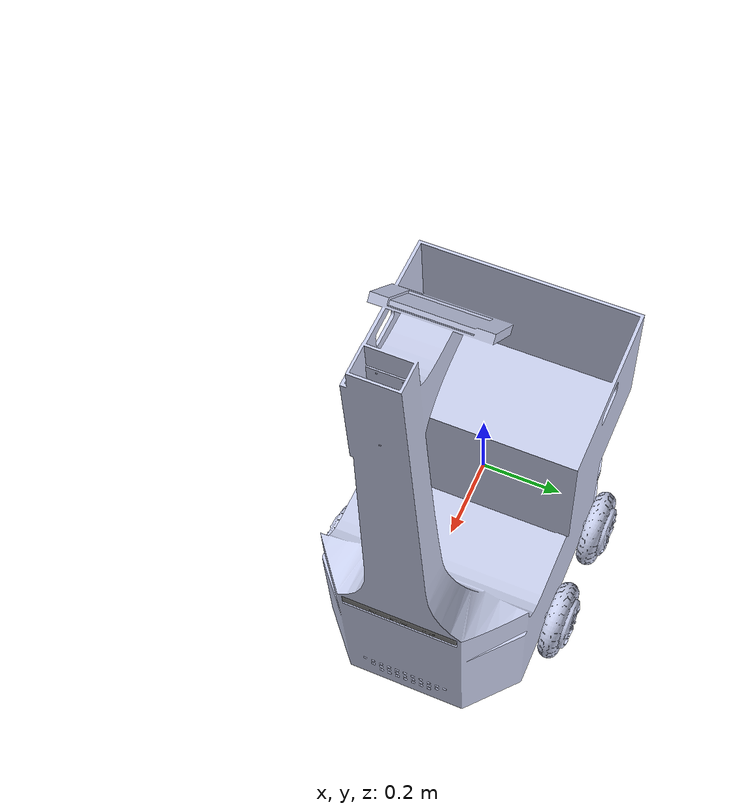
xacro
<?xml version="1.0" encoding="utf-8"?>
<!-- |    This document was autogenerated by xacro from mybot_description.urdf         | -->
<!-- |    EDITING THIS FILE BY HAND IS NOT RECOMMENDED                                 | -->
<robot name="myrobot" xmlns:xacro="http://www.ros.org/wiki/xacro">
<xacro:include filename="$(find mybot_description)/urdf/mybot.gazebo" />
  <link name="base_link">
    <inertial>
      <origin rpy="0 0 0" xyz="0.128386820110742 0.000686929395924185 0.158512775795314"/>
      <mass value="34.6383267278588"/>
      <inertia ixx="1.73796264850436" ixy="-0.000148699799662171" ixz="-0.260070022561171" iyy="2.13507888591353" iyz="-1.80220424604975E-06" izz="2.01858956817808"/>
    </inertial>
    <visual>
      <origin rpy="0 0 0" xyz="0 0 0"/>
      <geometry>
        <mesh filename="package://mybot_description/meshes/base_link.STL"/>
      </geometry>
      <material name="">
        <color rgba="0.792156862745098 0.819607843137255 0.933333333333333 1"/>
      </material>
    </visual>
    <collision>
      <origin rpy="0 0 0" xyz="0 0 0"/>
      <geometry>
        <mesh filename="package://mybot_description/meshes/base_link.STL"/>
      </geometry>
    </collision>
  </link>
  <link name="right_motor">
    <inertial>
      <origin rpy="0 0 0" xyz="-4.20679424628645E-09 0.0331497387034929 4.87590441966557E-06"/>
      <mass value="1.43144480602327"/>
      <inertia ixx="0.00331965861699229" ixy="-1.65643316648922E-10" ixz="-2.49861743707994E-10" iyy="0.00595557706241426" iyz="-3.90156064036137E-07" izz="0.00331969353968102"/>
    </inertial>
    <visual>
      <origin rpy="0 0 0" xyz="0 0 0"/>
      <geometry>
        <mesh filename="package://mybot_description/meshes/right_motor.STL"/>
      </geometry>
      <material name="">
        <color rgba="0.792156862745098 0.819607843137255 0.933333333333333 1"/>
      </material>
    </visual>
    <collision>
      <origin rpy="0 0 0" xyz="0 0 0"/>
      <geometry>
        <mesh filename="package://mybot_description/meshes/right_motor.STL"/>
      </geometry>
    </collision>
  </link>
  <joint name="right_motor_joint" type="continuous">
    <origin rpy="0 0 0" xyz="0.21185 -0.327 -0.242"/>
    <parent link="base_link"/>
    <child link="right_motor"/>
    <axis xyz="0 1 0"/>
  </joint>
  <link name="left_motor">
    <inertial>
      <origin rpy="0 0 0" xyz="-4.20679446833105E-09 0.0331497387034928 4.87590441999863E-06"/>
      <mass value="1.43144480602327"/>
      <inertia ixx="0.00331965861699228" ixy="-1.65643329348428E-10" ixz="-2.49861736040813E-10" iyy="0.00595557706241427" iyz="-3.90156064035793E-07" izz="0.00331969353968103"/>
    </inertial>
    <visual>
      <origin rpy="0 0 0" xyz="0 0 0"/>
      <geometry>
        <mesh filename="package://mybot_description/meshes/left_motor.STL"/>
      </geometry>
      <material name="">
        <color rgba="0.792156862745098 0.819607843137255 0.933333333333333 1"/>
      </material>
    </visual>
    <collision>
      <origin rpy="0 0 0" xyz="0 0 0"/>
      <geometry>
        <mesh filename="package://mybot_description/meshes/left_motor.STL"/>
      </geometry>
    </collision>
  </link>
  <joint name="left_motor_joint" type="continuous">
    <origin rpy="0 0 3.1416" xyz="0.21185 0.327 -0.242"/>
    <parent link="base_link"/>
    <child link="left_motor"/>
    <axis xyz="0 -1 0"/>
  </joint>
  <link name="right_wheel">
    <inertial>
      <origin rpy="0 0 0" xyz="4.2067941907753E-09 0.0331497387034929 -4.87590441988761E-06"/>
      <mass value="1.43144480602327"/>
      <inertia ixx="0.00331965861699229" ixy="1.65643316113872E-10" ixz="-2.49861736302478E-10" iyy="0.00595557706241427" iyz="3.9015606403935E-07" izz="0.00331969353968102"/>
    </inertial>
    <visual>
      <origin rpy="0 0 0" xyz="0 0 0"/>
      <geometry>
        <mesh filename="package://mybot_description/meshes/right_wheel.STL"/>
      </geometry>
      <material name="">
        <color rgba="0.792156862745098 0.819607843137255 0.933333333333333 1"/>
      </material>
    </visual>
    <collision>
      <origin rpy="0 0 0" xyz="0 0 0"/>
      <geometry>
        <mesh filename="package://mybot_description/meshes/right_wheel.STL"/>
      </geometry>
    </collision>
  </link>
  <joint name="right_wheel_joint" type="continuous">
    <origin rpy="0 0 0" xyz="-0.063147 -0.327 -0.242"/>
    <parent link="base_link"/>
    <child link="right_wheel"/>
    <axis xyz="0 1 0"/>
  </joint>
  <link name="left_wheel">
    <inertial>
      <origin rpy="0 0 0" xyz="4.20679427404202E-09 0.0331497387034928 -4.87590441961006E-06"/>
      <mass value="1.43144480602327"/>
      <inertia ixx="0.0033196586169923" ixy="1.65643308665796E-10" ixz="-2.49861736506603E-10" iyy="0.00595557706241428" iyz="3.90156064036769E-07" izz="0.00331969353968103"/>
    </inertial>
    <visual>
      <origin rpy="0 0 0" xyz="0 0 0"/>
      <geometry>
        <mesh filename="package://mybot_description/meshes/left_wheel.STL"/>
      </geometry>
      <material name="">
        <color rgba="0.792156862745098 0.819607843137255 0.933333333333333 1"/>
      </material>
    </visual>
    <collision>
      <origin rpy="0 0 0" xyz="0 0 0"/>
      <geometry>
        <mesh filename="package://mybot_description/meshes/left_wheel.STL"/>
      </geometry>
    </collision>
  </link>
  <joint name="left_wheel_joint" type="continuous">
    <origin rpy="0 0 3.1416" xyz="-0.063147 0.327 -0.242"/>
    <parent link="base_link"/>
    <child link="left_wheel"/>
    <axis xyz="0 -1 0"/>
  </joint>
  <link name="camera_link">
    <inertial>
      <origin rpy="0 0 0" xyz="-0.0277735063558892 0.0143658806531268 5.94217075544634E-09"/>
      <mass value="0.554061895865926"/>
      <inertia ixx="0.00292760923931499" ixy="-9.3576574546003E-07" ixz="-9.73024378416661E-11" iyy="0.00022646595658487" iyz="-4.83501853093787E-10" izz="0.00302698572685721"/>
    </inertial>
    <visual>
      <origin rpy="0 0 0" xyz="0 0 0"/>
      <geometry>
        <mesh filename="package://mybot_description/meshes/camera_link.STL"/>
      </geometry>
      <material name="">
        <color rgba="0.494117647058824 0.494117647058824 0.494117647058824 1"/>
      </material>
    </visual>
    <collision>
      <origin rpy="0 0 0" xyz="0 0 0"/>
      <geometry>
        <mesh filename="package://mybot_description/meshes/camera_link.STL"/>
      </geometry>
    </collision>
  </link>
  <joint name="kinect_joint" type="fixed">
    <origin rpy="0 0 0" xyz="0.49448 -0.016314 0.10959"/>
    <parent link="base_link"/>
    <child link="camera_link"/>
    <axis xyz="0 0 0"/>
  </joint>

  <!--  Kinect Optical Link and joints   /-->
<joint name="kinect_optical_joint" type="fixed">

<origin xyz="0 0 0" rpy="-1.5707 0 -1.5707"/> <!-- To invert the coordinates from image convention (Z is forward) to normal xyz /-->
<parent link="camera_link"/>
<child link="kinect_optical"/>
</joint>

<!--Virtual link to project the images to, and then flip it to us as its joint is flipped  /-->
<link name="kinect_optical">
</link>
</robot>
